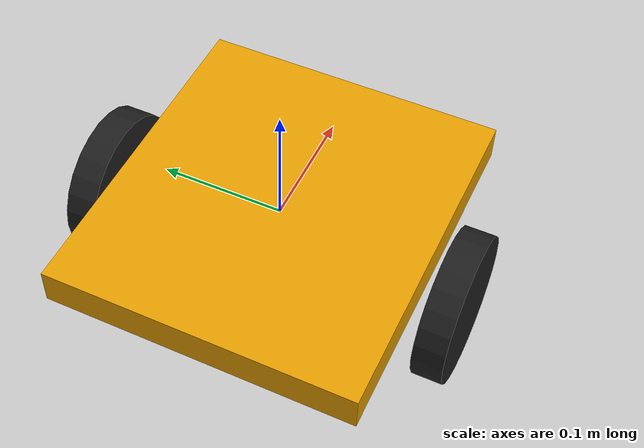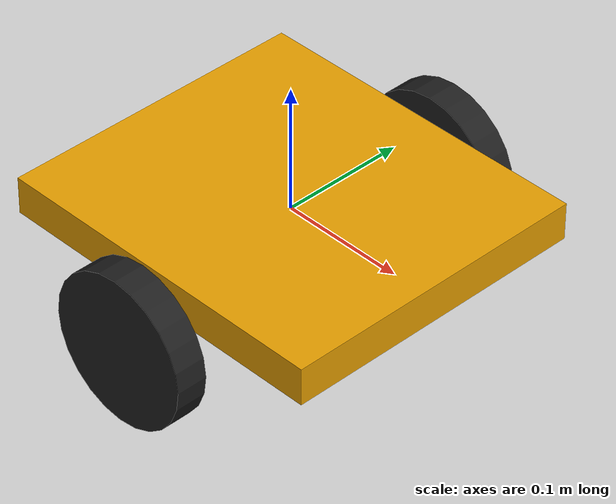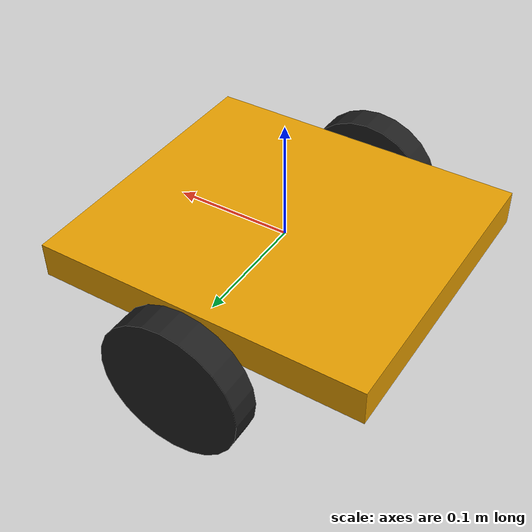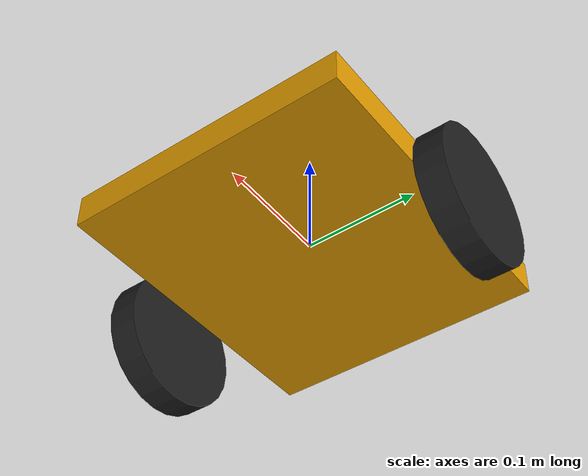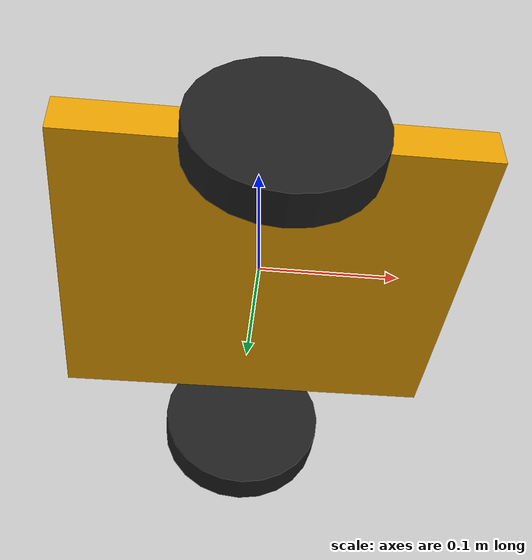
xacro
<?xml version="1.0"?>
<robot name="balance_bot" xmlns:xacro="http://www.ros.org/wiki/xacro">

    <xacro:property name="PI" value="3.1415926"/>

    <xacro:property name="chassis_mass" value="1.8"/>
    <xacro:property name="chassis_width" value="0.28"/>
    <xacro:property name="chassis_depth" value="0.25"/>
    <xacro:property name="chassis_height" value="0.03"/>

    <xacro:property name="wheel_mass" value="0.3"/>
    <xacro:property name="wheel_radius" value="0.06"/>
    <xacro:property name="wheel_width" value="0.025"/>

    <xacro:macro name="box_inertial" params="m w d h">
        <inertial>
            <mass value="${m}"/>
            <inertia ixx="${m / 12.0 * (d*d + h*h)}" ixy="0.0" ixz="0.0"
                     iyy="${m / 12.0 * (w*w + h*h)}" iyz="0.0"
                     izz="${m / 12.0 * (w*w + d*d)}"/>
        </inertial>
    </xacro:macro>

    <xacro:macro name="cylinder_inertial" params="m r h">
        <inertial>
            <mass value="${m}"/>
            <inertia ixx="${m / 12.0 * (3*r*r + h*h)}" ixy="0.0" ixz="0.0"
                     iyy="${m / 2.0 * r*r}" iyz="0.0"
                     izz="${m / 12.0 * (3*r*r + h*h)}"/>
        </inertial>
    </xacro:macro>

    <link name="base_link">
        <visual>
            <geometry>
                <box size="${chassis_width} ${chassis_depth} ${chassis_height}"/>
            </geometry>
        </visual>
        <collision>
            <geometry>
                <box size="${chassis_width} ${chassis_depth} ${chassis_height}"/>
            </geometry>
        </collision>
        <inertial>
            <mass value="${chassis_mass}"/>
            <origin xyz="0 0 0" rpy="0 0 0"/>
            <inertia ixx="${chassis_mass / 12.0 * (chassis_depth*chassis_depth + chassis_height*chassis_height)}" ixy="0.0" ixz="0.0"
                     iyy="${chassis_mass / 12.0 * (chassis_width*chassis_width + chassis_height*chassis_height)}" iyz="0.0"
                     izz="${chassis_mass / 12.0 * (chassis_width*chassis_width + chassis_depth*chassis_depth)}"/>
        </inertial>
    </link>

    <xacro:macro name="wheel" params="prefix reflect">
        <link name="${prefix}_wheel">
            <visual>
                <geometry>
                    <cylinder radius="${wheel_radius}" length="${wheel_width}"/>
                </geometry>
                <origin rpy="${PI/2} 0 0"/> </visual>
            <collision>
                <geometry>
                    <cylinder radius="${wheel_radius}" length="${wheel_width}"/>
                </geometry>
                <origin rpy="${PI/2} 0 0"/>
            </collision>
            <xacro:cylinder_inertial m="${wheel_mass}" r="${wheel_radius}" h="${wheel_width}"/>
        </link>

        <joint name="${prefix}_wheel_joint" type="continuous">
            <parent link="base_link"/>
            <child link="${prefix}_wheel"/>
            <origin xyz="0 ${reflect * (chassis_depth/2 + wheel_width/2 + 0.01)} -${chassis_height/2 + 0.02}" rpy="0 0 0"/>
            <axis xyz="0 1 0"/> <limit effort="3.0" velocity="70.0"/> <dynamics damping="0.01" friction="0.01"/> </joint>

        <transmission name="${prefix}_wheel_trans">
            <type>transmission_interface/SimpleTransmission</type>
            <joint name="${prefix}_wheel_joint">
                <hardwareInterface>hardware_interface/EffortJointInterface</hardwareInterface>
            </joint>
            <actuator name="${prefix}_wheel_motor">
                <hardwareInterface>hardware_interface/EffortJointInterface</hardwareInterface>
                <mechanicalReduction>1</mechanicalReduction>
            </actuator>
        </transmission>

        <gazebo reference="${prefix}_wheel">
            <mu1>1.0</mu1>
            <mu2>1.0</mu2>
            <material>Gazebo/Black</material>
        </gazebo>
    </xacro:macro>

    <xacro:wheel prefix="left" reflect="1"/>
    <xacro:wheel prefix="right" reflect="-1"/>

    <link name="imu_link">
        <visual>
            <geometry>
                <box size="0.02 0.02 0.01"/>
            </geometry>
            <material name="red">
                <color rgba="1 0 0 1"/>
            </material>
        </visual>
        <collision>
            <geometry>
                <box size="0.02 0.02 0.01"/>
            </geometry>
        </collision>
    </link>

    <joint name="imu_joint" type="fixed">
        <parent link="base_link"/>
        <child link="imu_link"/>
        <origin xyz="0 0 0" rpy="0 0 0"/>
    </joint>

    <gazebo reference="imu_link">
        <gravity>true</gravity>
        <sensor name="imu_sensor" type="imu">
            <always_on>true</always_on>
            <update_rate>100</update_rate> <visualize>true</visualize>
            <topic>__default_topic__</topic>
            <plugin filename="libgazebo_ros_imu_sensor.so" name="imu_plugin">
                <topicName>/imu_data</topicName> <bodyName>imu_link</bodyName>
                <updateRateHZ>100.0</updateRateHZ>
                <gaussianNoise>0.0</gaussianNoise> <xyzOffset>0 0 0</xyzOffset>
                <rpyOffset>0 0 0</rpyOffset>
                <frameName>imu_link</frameName>
            </plugin>
        </sensor>
    </gazebo>

    <gazebo>
        <plugin name="gazebo_ros_control" filename="libgazebo_ros_control.so">
            <robotNamespace>/</robotNamespace>
        </plugin>
    </gazebo>

</robot>
